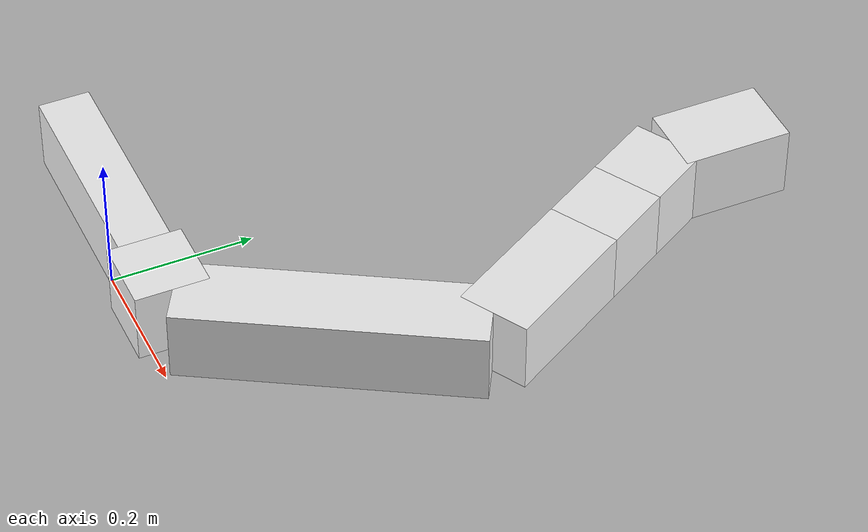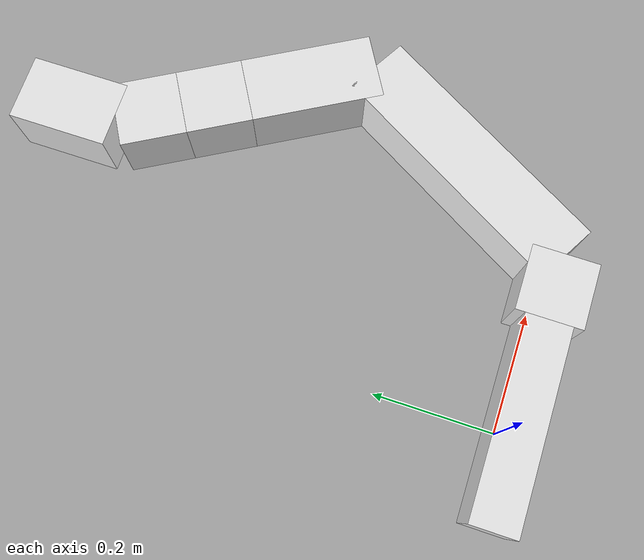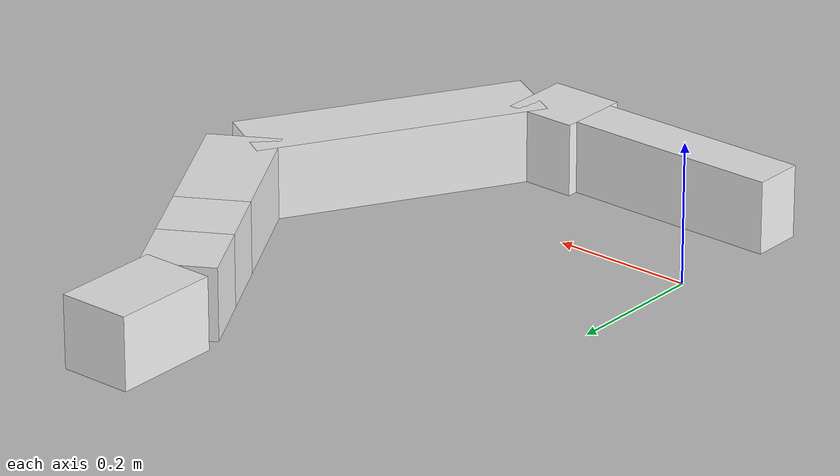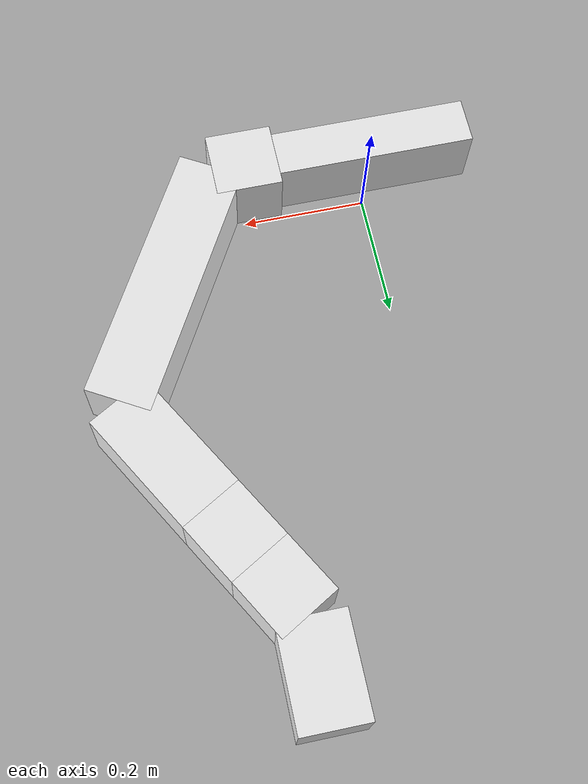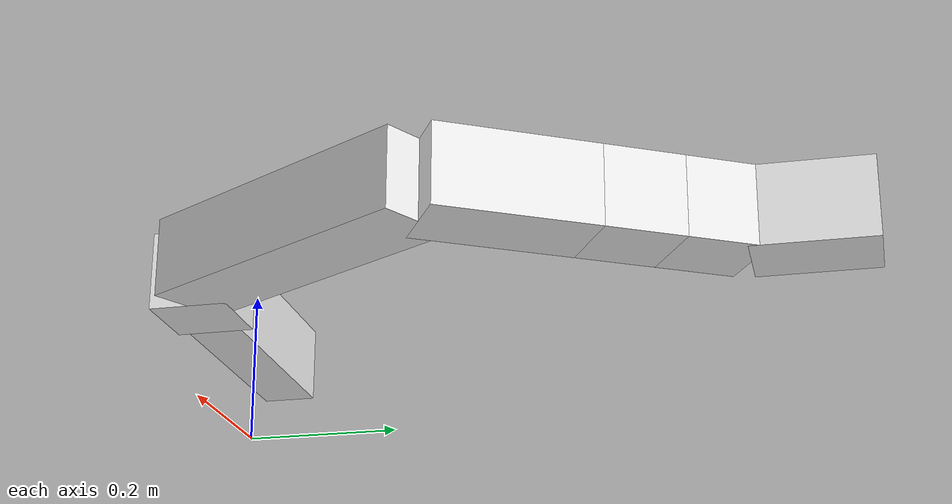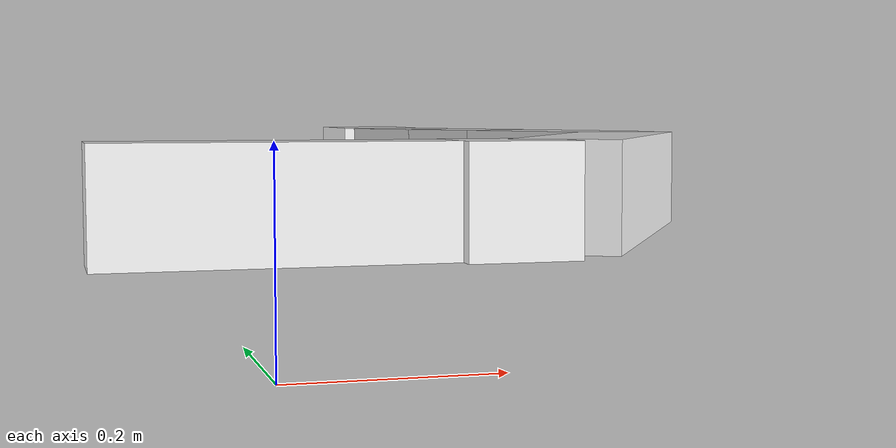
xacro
<?xml version="1.0"?>
<!-- Bimanual Manipulator -->
<robot name="robot_description" xmlns:xacro="http://www.ros.org/wiki/xacro">

  <gazebo>
      <plugin filename="libgazebo_ros_control.so" name="gazebo_ros_control">
          <robotNamespace>/arm</robotNamespace>
          <robotSimType>gazebo_ros_control/DefaultRobotHWSim</robotSimType>
      </plugin>
  </gazebo>

  <!-- Constants for robot dimensions -->
  <xacro:property name="PI" value="3.1415926535897931"/>

  <xacro:property name="mass_trunk" value="3" />
  <xacro:property name="mass_parent_neck" value="1" />
  <xacro:property name="mass_child_neck" value="5" />
  <xacro:property name="mass_arm_zero" value=".5" />
  <xacro:property name="mass_arm_one" value="1.5" />
  <xacro:property name="mass_arm_two" value=".5" />
  <xacro:property name="mass_arm_three" value=".5" />
  <xacro:property name="mass_arm_four" value=".5" />
  <xacro:property name="mass_hand" value="1" />
  <xacro:property name="mass_box" value="1" />

  <xacro:property name="width_trunk" value="0.2" />
  <xacro:property name="length_trunk" value="0.3" />
  <xacro:property name="height_trunk" value="0.09" />

  <xacro:property name="width_parent_neck" value="0.05" />
  <xacro:property name="length_parent_neck" value="0.05" />
  <xacro:property name="height_parent_neck" value="0.1" />

  <xacro:property name="width_child_neck" value="0.3" />
  <xacro:property name="length_child_neck" value="0.07" />
  <xacro:property name="height_child_neck" value="0.1" />

  <xacro:property name="width_arm" value="0.1" />

  <xacro:property name="length_arm_zero" value="0.1" />
  <xacro:property name="length_arm_one" value="0.4" />
  <xacro:property name="length_arm_two" value="0.2" />
  <xacro:property name="length_arm_three" value="0.1" />
  <xacro:property name="length_arm_four" value="0.1" />
  <xacro:property name="length_hand" value="0.15" />

  <xacro:property name="width_box" value="0.4" />
  <xacro:property name="length_box" value="0.25" />
  <xacro:property name="height_box" value="0.15" />

  <xacro:property name="damping_ratio_arm_zero" value="1" />
  <xacro:property name="friction_ratio_arm_zero" value="1" />

  <xacro:property name="damping_ratio_arm_one" value="1" />
  <xacro:property name="friction_ratio_arm_one" value="1" />

  <xacro:property name="damping_ratio_arm_two" value="1" />
  <xacro:property name="friction_ratio_arm_two" value="1" />

  <xacro:property name="damping_ratio_arm_three" value="1" />
  <xacro:property name="friction_ratio_arm_three" value="10" />

  <xacro:property name="damping_ratio_arm_four" value="1" />
  <xacro:property name="friction_ratio_arm_four" value="1" />

  <xacro:property name="damping_ratio_hand" value="1" />
  <xacro:property name="friction_ratio_hand" value=".1" />

  <xacro:property name="i_trunk_xx" value="0.011253" />
  <xacro:property name="i_trunk_yy" value="0.036203" />
  <xacro:property name="i_trunk_zz" value="0.042673" />

  <xacro:property name="i_parent_neck_xx" value="1" />
  <xacro:property name="i_parent_neck_yy" value="1" />
  <xacro:property name="i_parent_neck_zz" value="1" />

  <xacro:property name="i_child_neck_xx" value="1" />
  <xacro:property name="i_child_neck_yy" value="1" />
  <xacro:property name="i_child_neck_zz" value="1" />

  <xacro:property name="i_arm_zero_xx" value="${mass_arm_zero/12*(width_arm*width_arm + width_arm*width_arm)}" />
  <xacro:property name="i_arm_zero_yy" value="${mass_arm_zero/12*(width_arm*width_arm + length_arm_zero*length_arm_zero)}" />
  <xacro:property name="i_arm_zero_zz" value="${mass_arm_zero/12*(width_arm*width_arm + length_arm_zero*length_arm_zero)}" />

  <xacro:property name="i_arm_one_xx" value="${mass_arm_one/12*(width_arm*width_arm + width_arm*width_arm)}" />
  <xacro:property name="i_arm_one_yy" value="${mass_arm_one/12*(width_arm*width_arm + length_arm_one*length_arm_one)}" />
  <xacro:property name="i_arm_one_zz" value="${mass_arm_one/12*(width_arm*width_arm + length_arm_one*length_arm_one)}" />

  <xacro:property name="i_arm_two_xx" value="${mass_arm_two/12*(width_arm*width_arm + width_arm*width_arm)}" />
  <xacro:property name="i_arm_two_yy" value="${mass_arm_two/12*(width_arm*width_arm + length_arm_two*length_arm_two)}" />
  <xacro:property name="i_arm_two_zz" value="${mass_arm_two/12*(width_arm*width_arm + length_arm_two*length_arm_two)}" />

  <xacro:property name="i_arm_three_xx" value="${mass_arm_three/12*(width_arm*width_arm + width_arm*width_arm)}" />
  <xacro:property name="i_arm_three_yy" value="${mass_arm_three/12*(width_arm*width_arm + length_arm_three*length_arm_three)}" />
  <xacro:property name="i_arm_three_zz" value="${mass_arm_three/12*(width_arm*width_arm + length_arm_three*length_arm_three)}" />

  <xacro:property name="i_arm_four_xx" value="${mass_arm_four/12*(width_arm*width_arm + width_arm*width_arm)}" />
  <xacro:property name="i_arm_four_yy" value="${mass_arm_four/12*(width_arm*width_arm + length_arm_four*length_arm_four)}" />
  <xacro:property name="i_arm_four_zz" value="${mass_arm_four/12*(width_arm*width_arm + length_arm_four*length_arm_four)}" />

  <xacro:property name="i_hand_xx" value="${mass_hand/12*(width_arm*width_arm + width_arm*width_arm)}" />
  <xacro:property name="i_hand_yy" value="${mass_hand/12*(width_arm*width_arm + length_hand*length_hand)}" />
  <xacro:property name="i_hand_zz" value="${mass_hand/12*(width_arm*width_arm + length_hand*length_hand)}" />

  <xacro:property name="i_box_xx" value="${mass_box/12*(length_box*length_box + height_box*height_box)}" />
  <xacro:property name="i_box_yy" value="${mass_box/12*(width_box*width_box + height_box*height_box)}" />
  <xacro:property name="i_box_zz" value="${mass_box/12*(width_box*width_box + length_box*length_box)}" />

  <gazebo reference="world">
      <static>true</static>
  </gazebo>

  <gazebo reference="child_neck">
      <mu1>0.9</mu1>
      <mu2>0.9</mu2>
      <material>Gazebo/DarkGrey</material>
      <self_collide>1</self_collide>
      <kp value="1000000.0"/>
      <kd value="1.0"/>
  </gazebo>

  <gazebo reference="arm_zero">
      <mu1>0.9</mu1>
      <mu2>0.9</mu2>
      <material>Gazebo/White</material>
      <self_collide>1</self_collide>
      <kp value="1000000.0"/>
      <kd value="1.0"/>
  </gazebo>

  <gazebo reference="arm_one">
      <mu1>0.9</mu1>
      <mu2>0.9</mu2>
      <material>Gazebo/DarkGrey</material>
      <self_collide>1</self_collide>
      <kp value="1000000.0"/>
      <kd value="1.0"/>
  </gazebo>

  <gazebo reference="arm_two">
      <mu1>0.9</mu1>
      <mu2>0.9</mu2>
      <material>Gazebo/White</material>
      <self_collide>1</self_collide>
      <kp value="1000000.0"/>
      <kd value="1.0"/>
  </gazebo>

  <gazebo reference="arm_three">
      <mu1>0.9</mu1>
      <mu2>0.9</mu2>
      <material>Gazebo/DarkGrey</material>
      <self_collide>1</self_collide>
      <kp value="1000000.0"/>
      <kd value="1.0"/>
  </gazebo>

  <gazebo reference="arm_four">
      <mu1>0.9</mu1>
      <mu2>0.9</mu2>
      <material>Gazebo/White</material>
      <self_collide>1</self_collide>
      <kp value="1000000.0"/>
      <kd value="1.0"/>
  </gazebo>

  <gazebo reference="hand">
      <mu1>0.9</mu1>
      <mu2>0.9</mu2>
      <material>Gazebo/Red</material>
      <self_collide>1</self_collide>
      <kp value="1000000.0"/>
      <kd value="1.0"/>
  </gazebo>

  <gazebo reference="box">
      <mu1>0.9</mu1>
      <mu2>0.9</mu2>
      <material>Gazebo/Green</material>
      <self_collide>1</self_collide>
      <kp value="1000000.0"/>
      <kd value="1.0"/>
  </gazebo>

  <link name="world"/>

  <joint name="child_neck_to_parent_neck" type="fixed">
    <origin rpy="0 0 0" xyz="0 0 ${height_parent_neck}"/>
    <parent link="world"/>
    <child link="child_neck"/>
  </joint>

  <link name="child_neck">
    <collision>
      <origin rpy="0 0 0" xyz="0 0 ${height_child_neck/2}"/>
      <geometry>
	       <box size="${width_child_neck} ${length_child_neck} ${height_child_neck}"/>
      </geometry>
    </collision>
    <visual>
      <origin rpy="0 0 0" xyz="0 0 ${height_child_neck/2}"/>
      <geometry>
	       <box size="${width_child_neck} ${length_child_neck} ${height_child_neck}"/>
      </geometry>
      <material name="white"/>
    </visual>
    <inertial>
      <origin rpy="0 0 0" xyz="0 0 ${height_child_neck/2}"/>
      <mass value="${mass_child_neck}"/>
      <inertia
        ixx="${i_child_neck_xx}" ixy="0.0" ixz="0.0"
    	  iyy="${i_child_neck_yy}" iyz="0.0"
    	  izz="${i_child_neck_zz}"/>
    </inertial>
  </link>

  <joint name="arm_zero_to_child_neck" type="revolute">
    <axis xyz="1 0 0"/>
    <limit effort="50" lower="-6.28" upper="6.28" velocity="4"/>
    <origin rpy="0 0 0" xyz="${width_child_neck/2} 0 ${height_child_neck/2}"/>
    <parent link="child_neck"/>
    <child link="arm_zero"/>
    <dynamics damping="${damping_ratio_arm_zero}" friction="${friction_ratio_arm_zero}"/>
  </joint>

  <link name="arm_zero">
    <collision>
      <origin rpy="0 0 0" xyz="${length_arm_zero/2} 0 0"/>
      <geometry>
	       <box size="${length_arm_zero} ${width_arm} ${width_arm}"/>
      </geometry>
    </collision>
    <visual>
      <origin rpy="0 0 0" xyz="${length_arm_zero/2} 0 0"/>
      <geometry>
	       <box size="${length_arm_zero} ${width_arm} ${width_arm}"/>
      </geometry>
      <material name="white"/>
    </visual>
    <inertial>
      <origin rpy="0 0 0" xyz="${length_arm_zero/2} 0 0"/>
      <mass value="${mass_arm_zero}"/>
      <inertia
    	  ixx="${i_arm_zero_xx}" ixy="0.0" ixz="0.0"
    	  iyy="${i_arm_zero_yy}" iyz="0.0"
    	  izz="${i_arm_zero_zz}"/>
    </inertial>
  </link>

  <joint name="arm_one_to_arm_zero" type="revolute">
    <axis xyz="0 0 1"/>
    <limit effort="50" lower="-6.28" upper="6.28" velocity="4"/>
    <origin rpy="0 0 ${PI/3}" xyz="${width_arm} 0 0"/>  <!-- in parent link frame -->
    <parent link="arm_zero"/>
    <child link="arm_one"/>
    <dynamics damping="${damping_ratio_arm_one}" friction="${friction_ratio_arm_one}"/>
  </joint>

  <link name="arm_one">
    <collision>
      <origin rpy="0 0 0" xyz="${length_arm_one/2} 0 0"/> <!-- in local frame -->
      <geometry>
	       <box size="${length_arm_one} ${width_arm} ${width_arm}"/>  <!-- in local frame -->
      </geometry>
    </collision>
    <visual>
      <origin rpy="0 0 0" xyz="${length_arm_one/2} 0 0"/>
      <geometry>
	       <box size="${length_arm_one} ${width_arm} ${width_arm}"/>
      </geometry>
      <material name="white"/>
    </visual>
    <inertial>
      <origin rpy="0 0 0" xyz="${length_arm_one/2} 0 0"/>
      <mass value="${mass_arm_one}"/>
      <inertia
    	  ixx="${i_arm_one_xx}" ixy="0.0" ixz="0.0"
    	  iyy="${i_arm_one_yy}" iyz="0.0"
    	  izz="${i_arm_one_zz}"/>
    </inertial>
  </link>

  <joint name="arm_two_to_arm_one" type="revolute">
    <axis xyz="0 0 1"/>
    <limit effort="50" lower="-6.28" upper="6.28" velocity="4"/>
    <origin rpy="0 0 ${PI/3}" xyz="${length_arm_one} 0 0"/>
    <parent link="arm_one"/>
    <child link="arm_two"/>
    <dynamics damping="${damping_ratio_arm_two}" friction="${friction_ratio_arm_two}"/>
  </joint>

  <link name="arm_two">
    <collision>
      <origin rpy="0 0 0" xyz="${length_arm_two/2} 0 0"/>
      <geometry>
	       <box size="${length_arm_two} ${width_arm} ${width_arm}"/>
      </geometry>
    </collision>
    <visual>
      <origin rpy="0 0 0" xyz="${length_arm_two/2} 0 0"/>
      <geometry>
	       <box size="${length_arm_two} ${width_arm} ${width_arm}"/>
      </geometry>
      <material name="white"/>
    </visual>
    <inertial>
      <origin rpy="0 0 0" xyz="${length_arm_two/2} 0 0"/>
      <mass value="${mass_arm_two}"/>
      <inertia
        ixx="${i_arm_two_xx}" ixy="0.0" ixz="0.0"
    	  iyy="${i_arm_two_yy}" iyz="0.0"
    	  izz="${i_arm_two_zz}"/>
    </inertial>
  </link>

  <joint name="arm_three_to_arm_two" type="revolute">
    <axis xyz="1 0 0"/>
    <limit effort="50" lower="-6.28" upper="6.28" velocity="4"/>
    <origin rpy="0 0 0" xyz="${length_arm_two} 0 0"/>
    <parent link="arm_two"/>
    <child link="arm_three"/>
    <dynamics damping="${damping_ratio_arm_three}" friction="${friction_ratio_arm_three}"/>
  </joint>

  <link name="arm_three">
    <collision>
      <origin rpy="0 0 0" xyz="${length_arm_three/2} 0 0"/>
      <geometry>
	       <box size="${length_arm_three} ${width_arm} ${width_arm}"/>
      </geometry>
    </collision>
    <visual>
      <origin rpy="0 0 0" xyz="${length_arm_three/2} 0 0"/>
      <geometry>
	       <box size="${length_arm_three} ${width_arm} ${width_arm}"/>
      </geometry>
      <material name="white"/>
    </visual>
    <inertial>
      <origin rpy="0 0 0" xyz="${length_arm_three/2} 0 0"/>
      <mass value="${mass_arm_three}"/>
      <inertia
        ixx="${i_arm_three_xx}" ixy="0.0" ixz="0.0"
    	  iyy="${i_arm_three_yy}" iyz="0.0"
    	  izz="${i_arm_three_zz}"/>
    </inertial>
  </link>

  <joint name="arm_four_to_arm_three" type="revolute">
    <axis xyz="0 0 1"/>
    <limit effort="50" lower="-6.28" upper="6.28" velocity="4"/>
    <origin rpy="0 0 0" xyz="${length_arm_three} 0 0"/>
    <parent link="arm_three"/>
    <child link="arm_four"/>
    <dynamics damping="${damping_ratio_arm_four}" friction="${friction_ratio_arm_four}"/>
  </joint>

  <link name="arm_four">
    <collision>
      <origin rpy="0 0 0" xyz="${length_arm_four/2} 0 0"/>
      <geometry>
	       <box size="${length_arm_four} ${width_arm} ${width_arm}"/>
      </geometry>
    </collision>
    <visual>
      <origin rpy="0 0 0" xyz="${length_arm_four/2} 0 0"/>
      <geometry>
	       <box size="${length_arm_four} ${width_arm} ${width_arm}"/>
      </geometry>
      <material name="white"/>
    </visual>
    <inertial>
      <origin rpy="0 0 0" xyz="${length_arm_four/2} 0 0"/>
      <mass value="${mass_arm_four}"/>
      <inertia
        ixx="${i_arm_four_xx}" ixy="0.0" ixz="0.0"
    	  iyy="${i_arm_four_yy}" iyz="0.0"
    	  izz="${i_arm_four_zz}"/>
    </inertial>
  </link>

  <joint name="hand_to_arm_four" type="revolute">
    <axis xyz="0 0 1"/>
    <limit effort="100" lower="-6.28" upper="6.28" velocity="10"/>
    <origin rpy="0 0 ${-PI/6}" xyz="${length_arm_four} 0 0"/>
    <parent link="arm_four"/>
    <child link="hand"/>
    <dynamics damping="${damping_ratio_hand}" friction="${friction_ratio_hand}"/>
  </joint>

  <link name="hand">
    <collision>
      <origin rpy="0 0 0" xyz="${length_hand/2} 0 0"/>
      <geometry>
	       <box size="${length_hand} ${width_arm} ${width_arm}"/>
      </geometry>
    </collision>
    <visual>
      <origin rpy="0 0 0" xyz="${length_hand/2} 0 0"/>
      <geometry>
	       <box size="${length_hand} ${width_arm} ${width_arm}"/>
      </geometry>
      <material name="white"/>
    </visual>
    <inertial>
      <origin rpy="0 0 0" xyz="${length_hand/2} 0 0"/>
      <mass value="${mass_hand}"/>
      <inertia
        ixx="${i_hand_xx}" ixy="0.0" ixz="0.0"
    	  iyy="${i_hand_yy}" iyz="0.0"
    	  izz="${i_hand_zz}"/>
    </inertial>
  </link>

  <transmission name="tran1">
    <type>transmission_interface/SimpleTransmission</type>
    <joint name="arm_zero_to_child_neck">
      <hardwareInterface>hardware_interface/EffortJointInterface</hardwareInterface>
    </joint>
    <actuator name="motor1">
      <hardwareInterface>hardware_interface/EffortJointInterface</hardwareInterface>
      <mechanicalReduction>1</mechanicalReduction>
    </actuator>
  </transmission>

  <transmission name="tran2">
    <type>transmission_interface/SimpleTransmission</type>
    <joint name="arm_one_to_arm_zero">
      <hardwareInterface>hardware_interface/EffortJointInterface</hardwareInterface>
    </joint>
    <actuator name="motor2">
      <hardwareInterface>hardware_interface/EffortJointInterface</hardwareInterface>
      <mechanicalReduction>1</mechanicalReduction>
    </actuator>
  </transmission>

  <transmission name="tran3">
    <type>transmission_interface/SimpleTransmission</type>
    <joint name="arm_two_to_arm_one">
      <hardwareInterface>hardware_interface/EffortJointInterface</hardwareInterface>
    </joint>
    <actuator name="motor3">
      <hardwareInterface>hardware_interface/EffortJointInterface</hardwareInterface>
      <mechanicalReduction>1</mechanicalReduction>
    </actuator>
  </transmission>

  <transmission name="tran4">
    <type>transmission_interface/SimpleTransmission</type>
    <joint name="arm_three_to_arm_two">
      <hardwareInterface>hardware_interface/EffortJointInterface</hardwareInterface>
    </joint>
    <actuator name="motor4">
      <hardwareInterface>hardware_interface/EffortJointInterface</hardwareInterface>
      <mechanicalReduction>1</mechanicalReduction>
    </actuator>
  </transmission>

  <transmission name="tran5">
    <type>transmission_interface/SimpleTransmission</type>
    <joint name="arm_four_to_arm_three">
      <hardwareInterface>hardware_interface/EffortJointInterface</hardwareInterface>
    </joint>
    <actuator name="motor5">
      <hardwareInterface>hardware_interface/EffortJointInterface</hardwareInterface>
      <mechanicalReduction>1</mechanicalReduction>
    </actuator>
  </transmission>

  <transmission name="tran6">
    <type>transmission_interface/SimpleTransmission</type>
    <joint name="hand_to_arm_four">
      <hardwareInterface>hardware_interface/EffortJointInterface</hardwareInterface>
    </joint>
    <actuator name="motor6">
      <hardwareInterface>hardware_interface/EffortJointInterface</hardwareInterface>
      <mechanicalReduction>1</mechanicalReduction>
    </actuator>
  </transmission>

</robot>
